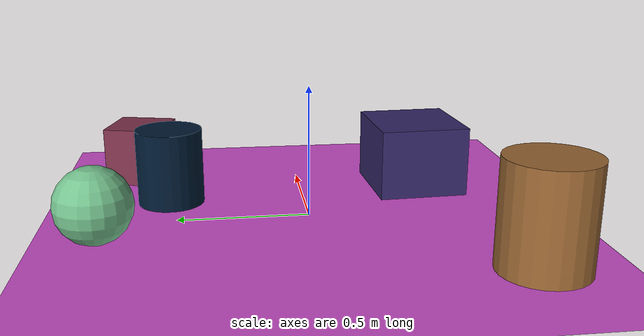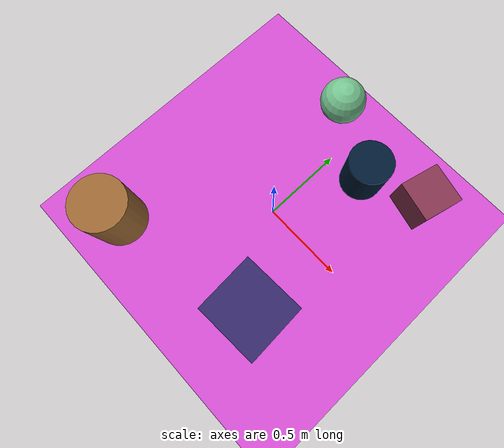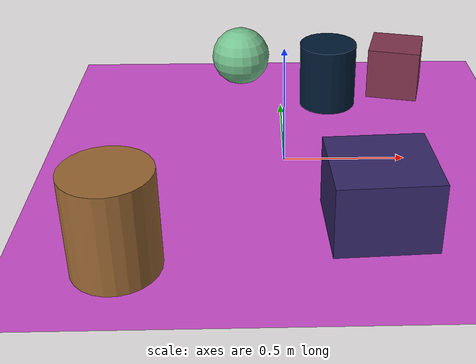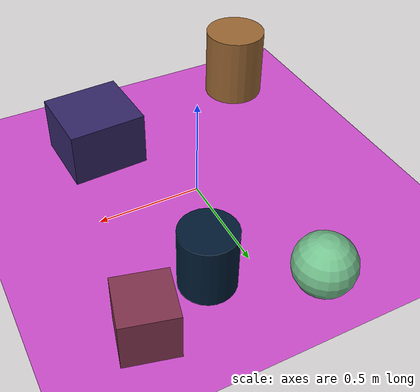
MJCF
<mujoco>
   <asset>
<texture type="skybox" builtin="gradient" rgb1="0.7 0.5 0.7" rgb2="0.5 0.4 0.6" width="500" height="500"/>
<texture name="flat_0" builtin="flat" rgb1="0.6 0.4 0.2" rgb2="0.6 0.4 0.2"  width="500" height="500"/>
<texture name="flat_1" builtin="flat" rgb1="0.0 0.1 0.2" rgb2="0.0 0.1 0.2"  width="500" height="500"/>
<texture name="gradient_2" builtin="gradient" rgb1="0.0 0.8 0.7" rgb2="0.9 0.7 0.4" width="500" height="500"/>
<texture name="flat_3" builtin="flat" rgb1="0.5 0.2 0.3" rgb2="0.5 0.2 0.3"  width="500" height="500"/>
<texture name="checker_4" builtin="checker" rgb1="0.3 0.2 0.5" rgb2="0.1 0.1 0.3" width="500" height="500"/><material name="flat_0_mat" reflectance="0.05252241832443216" texture="flat_0" texuniform="true"/>
<material name="flat_1_mat" reflectance="0.612317250563847" texture="flat_1" texuniform="true"/>
<material name="gradient_2_mat" reflectance="0.18614663262553954" texture="gradient_2" texuniform="true"/>
<material name="flat_3_mat" reflectance="0.2528049330200516" texture="flat_3" texuniform="true"/>
<material name="checker_4_mat" reflectance="0.490913598044331" texrepeat="4 4" texture="checker_4" texuniform="false" />
   </asset>

   <worldbody>
     <geom type="plane" size="1 1 0.1" rgba="0.8 0.3 0.8 1" />
<light pos="0.6430810215214466 -0.6209584061313511 2" dir="0 0 -1" cutoff="90" diffuse="1 1 1" specular="1 1 1"/>
<geom type="cylinder" pos="-0.59 -0.69 0.19" size="0.16 0.19 0.19" material="flat_0_mat" euler="0 0 69" />
<geom type="cylinder" pos="0.22 0.53 0.15" size="0.13 0.15 0.15" material="flat_1_mat" euler="0 0 65" />
<geom type="sphere" pos="-0.19 0.77 0.14" size="0.14 0.14 0.14" material="gradient_2_mat" euler="0 0 59" />
<geom type="box" pos="0.56 0.67 0.12" size="0.12 0.12 0.12" material="flat_3_mat" euler="0 0 76" />
<geom type="box" pos="0.33 -0.48 0.14" size="0.19 0.18 0.14" material="checker_4_mat" euler="0 0 3" /><camera euler="60 0 180" fovy="60" name="camera1" pos="-0.2 -1.5 1"></camera>   </worldbody>
   <visual>
      <headlight diffuse="0.7 0.7 0.7"/>
   </visual>
</mujoco>
